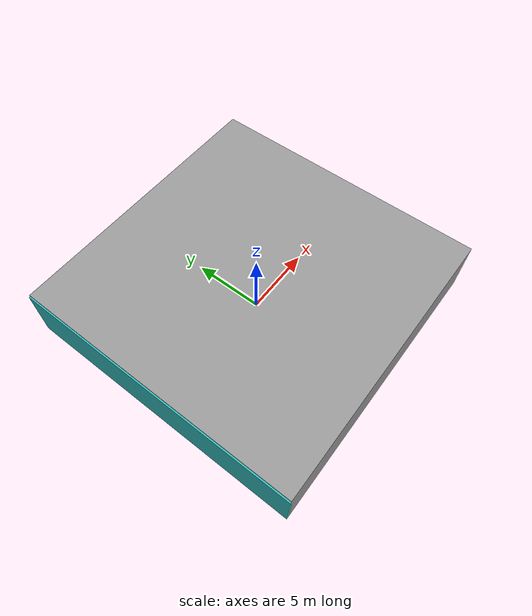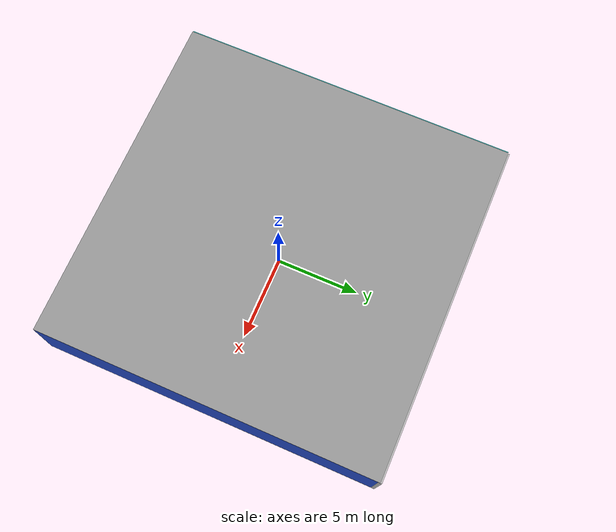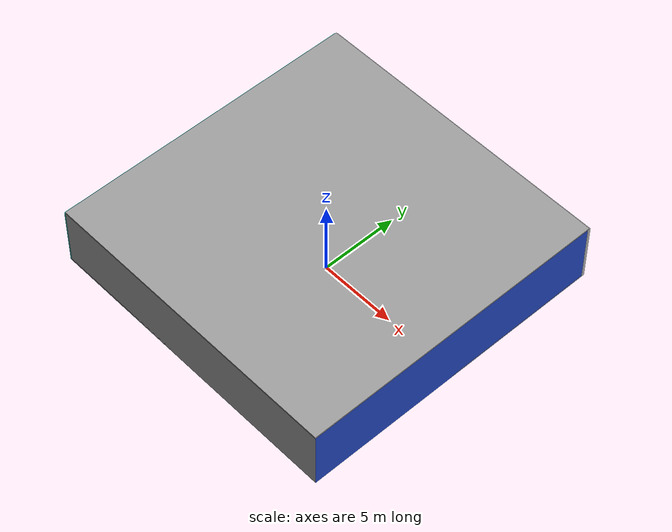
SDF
<sdf version="1.4">
 <world name="default">
  <physics type="ode">
   <max_step_size>0.001</max_step_size>
   <real_time_factor>1</real_time_factor>
   <real_time_update_rate>1000</real_time_update_rate>
   <gravity>0 0 -9.8</gravity>
  </physics>
  <scene><ambient>0.4 0.4 0.4 1</ambient><background>0.7 0.7 0.7 1</background><shadows>1</shadows></scene>
  <model name="Surrounding">
   <static>1</static>
   <link name="Ceiling">
    <collision name="Ceiling_Collision"><geometry><box><size>20 20 0.1</size></box></geometry></collision>
    <visual name="Ceiling_Visual">
     <geometry><box><size>20 20 0.1</size></box></geometry>
     <material>
      <script><uri>file://media/materials/scripts/gazebo.material</uri><name>Gazebo/GreyGradientSky</name></script>
     </material>
    </visual>
    <pose>0 0 4.05 0 0 0</pose>
   </link>
   <link name="Wall_South">
    <collision name="Wall_South_Collision">
     <geometry><box><size>20 0 4</size></box></geometry>
     <pose>0 0 2 0 -0 0</pose>
    </collision>
    <visual name="Wall_South_Visual">
     <pose>0 0 2 0 -0 0</pose>
     <geometry><box><size>20 0 4</size></box></geometry>
     <material>
      <script><uri>file://media/materials/scripts/gazebo.material</uri><name>Gazebo/GreyGradientSky</name></script>
     </material>
    </visual>
    <velocity_decay><linear>0</linear><angular>0</angular></velocity_decay>
    <pose>0 -10 0 0 -0 0</pose>
   </link>
   <link name="Wall_East">
    <collision name="Wall_21_Collision">
     <geometry><box><size>20 0 4</size></box></geometry>
     <pose>0 0 2 0 -0 0</pose>
    </collision>
    <visual name="Wall_21_Visual">
     <pose>0 0 2 0 -0 0</pose>
     <geometry><box><size>20 0 4</size></box></geometry>
     <material>
      <script><uri>file://media/materials/scripts/gazebo.material</uri><name>Gazebo/BlueGlow</name></script>
     </material>
    </visual>
    <velocity_decay><linear>0</linear><angular>0</angular></velocity_decay>
    <pose>10 0 0 0 -0 1.5708</pose>
   </link>
   <link name="Wall_North">
    <collision name="Wall_22_Collision">
     <geometry><box><size>20 0.2 4</size></box></geometry>
     <pose>0 0 2 0 -0 0</pose>
    </collision>
    <visual name="Wall_22_Visual">
     <pose>0 0 2 0 -0 0</pose>
     <geometry><box><size>20 0.2 4</size></box></geometry>
     <material>
      <script><uri>file://media/materials/scripts/gazebo.material</uri><name>Gazebo/PioneerBody</name></script>
     </material>
    </visual>
    <velocity_decay><linear>0</linear><angular>0</angular></velocity_decay>
    <pose>0 10 0 0 -0 0</pose>
   </link>
   <link name="Wall_West">
    <collision name="Wall_23_Collision">
     <geometry><box><size>20 0.2 4</size></box></geometry>
     <pose>0 0 2 0 -0 0</pose>
    </collision>
    <visual name="Wall_23_Visual">
     <pose>0 0 2 0 -0 0</pose>
     <geometry><box><size>20 0.2 4</size></box></geometry>
     <material>
      <script><uri>file://media/materials/scripts/gazebo.material</uri><name>Gazebo/Turquoise</name></script>
     </material>
    </visual>
    <velocity_decay><linear>0</linear><angular>0</angular></velocity_decay>
    <pose>-10 0 0 0 0 -1.5708</pose>
   </link>
   <link name="Ground_link">
    <collision name="collision">
     <pose>0 0 .05 0 -0 0</pose>
     <geometry><box><size>20 20 0.1</size></box></geometry>
    </collision>
    <visual name="visual">
     <pose>0 0 .05 0 -0 0</pose>
     <geometry><box><size>20 20 0.1</size></box></geometry>
     <material>
      <script><uri>file://media/materials/scripts/gazebo.material</uri><name>Gazebo/GreyTransparent</name></script>
     </material>
    </visual>
   </link>
   <static>1</static>
  </model>
  <spherical_coordinates>
   <surface_model>EARTH_WGS84</surface_model>
   <latitude_deg>0</latitude_deg>
   <longitude_deg>0</longitude_deg>
   <elevation>0</elevation>
   <heading_deg>0</heading_deg>
  </spherical_coordinates>
  <light name="lightball_0" type="diffuse">
   <diffuse>0.8 0.8 0.8 1</diffuse>
   <specular>0.2 0.2 0.2 1</specular>
   <attenuation>
    <range>100</range>
    <constant>0.7</constant>
    <linear>0.01</linear>
    <quadratic>0.001</quadratic>
   </attenuation>
   <direction>-0.5 0.1 -0.9</direction>
   <pose>-6.13897293477 -0.906216294209 2.19579730607 0 0 0</pose>
  </light>
  <light name="lightball_1" type="diffuse">
   <diffuse>0.8 0.8 0.8 1</diffuse>
   <specular>0.2 0.2 0.2 1</specular>
   <attenuation>
    <range>100</range>
    <constant>0.7</constant>
    <linear>0.01</linear>
    <quadratic>0.001</quadratic>
   </attenuation>
   <direction>-0.5 0.1 -0.9</direction>
   <pose>1.99689737927 -9.441610287 2.96383214236 0 0 0</pose>
  </light>
  <light name="lightball_2" type="diffuse">
   <diffuse>0.8 0.8 0.8 1</diffuse>
   <specular>0.2 0.2 0.2 1</specular>
   <attenuation>
    <range>100</range>
    <constant>0.7</constant>
    <linear>0.01</linear>
    <quadratic>0.001</quadratic>
   </attenuation>
   <direction>-0.5 0.1 -0.9</direction>
   <pose>0.82563271576 -4.35414813023 1.14372326048 0 0 0</pose>
  </light>
  <light name="lightball_3" type="diffuse">
   <diffuse>0.8 0.8 0.8 1</diffuse>
   <specular>0.2 0.2 0.2 1</specular>
   <attenuation>
    <range>100</range>
    <constant>0.7</constant>
    <linear>0.01</linear>
    <quadratic>0.001</quadratic>
   </attenuation>
   <direction>-0.5 0.1 -0.9</direction>
   <pose>6.70375515236 5.64724782464 3.38953433739 0 0 0</pose>
  </light>
  <light name="lightball_4" type="diffuse">
   <diffuse>0.8 0.8 0.8 1</diffuse>
   <specular>0.2 0.2 0.2 1</specular>
   <attenuation>
    <range>100</range>
    <constant>0.7</constant>
    <linear>0.01</linear>
    <quadratic>0.001</quadratic>
   </attenuation>
   <direction>-0.5 0.1 -0.9</direction>
   <pose>5.71366999187 -6.46693241032 0.991177118645 0 0 0</pose>
  </light>
  <light name="lightball_5" type="diffuse">
   <diffuse>0.8 0.8 0.8 1</diffuse>
   <specular>0.2 0.2 0.2 1</specular>
   <attenuation>
    <range>100</range>
    <constant>0.7</constant>
    <linear>0.01</linear>
    <quadratic>0.001</quadratic>
   </attenuation>
   <direction>-0.5 0.1 -0.9</direction>
   <pose>0.586623435115 -6.18874938888 1.5561358713 0 0 0</pose>
  </light>
  <light name="lightball_6" type="diffuse">
   <diffuse>0.8 0.8 0.8 1</diffuse>
   <specular>0.2 0.2 0.2 1</specular>
   <attenuation>
    <range>100</range>
    <constant>0.7</constant>
    <linear>0.01</linear>
    <quadratic>0.001</quadratic>
   </attenuation>
   <direction>-0.5 0.1 -0.9</direction>
   <pose>-2.97401159433 -8.08346389623 1.02627421046 0 0 0</pose>
  </light>
  <light name="lightball_7" type="diffuse">
   <diffuse>0.8 0.8 0.8 1</diffuse>
   <specular>0.2 0.2 0.2 1</specular>
   <attenuation>
    <range>100</range>
    <constant>0.7</constant>
    <linear>0.01</linear>
    <quadratic>0.001</quadratic>
   </attenuation>
   <direction>-0.5 0.1 -0.9</direction>
   <pose>-5.19649681911 -3.09677943146 2.20774190526 0 0 0</pose>
  </light>
  <light name="lightball_8" type="diffuse">
   <diffuse>0.8 0.8 0.8 1</diffuse>
   <specular>0.2 0.2 0.2 1</specular>
   <attenuation>
    <range>100</range>
    <constant>0.7</constant>
    <linear>0.01</linear>
    <quadratic>0.001</quadratic>
   </attenuation>
   <direction>-0.5 0.1 -0.9</direction>
   <pose>1.45485873929 -7.23324881852 1.25474356081 0 0 0</pose>
  </light>
  <light name="lightball_9" type="diffuse">
   <diffuse>0.8 0.8 0.8 1</diffuse>
   <specular>0.2 0.2 0.2 1</specular>
   <attenuation>
    <range>100</range>
    <constant>0.7</constant>
    <linear>0.01</linear>
    <quadratic>0.001</quadratic>
   </attenuation>
   <direction>-0.5 0.1 -0.9</direction>
   <pose>4.30696843902 7.39249143321 3.07939403254 0 0 0</pose>
  </light>
  <light name="lightball_10" type="diffuse">
   <diffuse>0.8 0.8 0.8 1</diffuse>
   <specular>0.2 0.2 0.2 1</specular>
   <attenuation>
    <range>100</range>
    <constant>0.7</constant>
    <linear>0.01</linear>
    <quadratic>0.001</quadratic>
   </attenuation>
   <direction>-0.5 0.1 -0.9</direction>
   <pose>-5.12491157552 2.20921384909 2.84267580873 0 0 0</pose>
  </light>
  <include>
   <uri>model://construction_cone</uri>
   <pose>-7.70573358892 -6.5085398469 0 0 0 1.00791708943</pose>
  </include>
  <include>
   <uri>model://robocup_3Dsim_goal</uri>
   <pose>-4.39197330214 3.76830019033 0 0 0 2.88180476822</pose>
  </include>
  <include><uri>model://cabinet</uri><pose>-1.06186071092 -7.68427334345 0 0 0 0.719060933179</pose></include>
  <include>
   <uri>model://construction_cone</uri>
   <pose>-1.06043076987 6.52717961212 0 0 0 1.89550299749</pose>
  </include>
  <include>
   <uri>model://robocup_3Dsim_goal</uri>
   <pose>6.50756002049 -4.24603070476 0 0 0 3.01874930663</pose>
  </include>
 </world>
</sdf>

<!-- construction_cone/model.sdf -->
<sdf version="1.5">
  <model name="Construction Cone">
    <link name="link">
      <collision name="collision">
        <geometry>
          <mesh>
            <scale>10 10 10</scale>
            <uri>file://isr-testbed/construction_cone/meshes/construction_cone.dae</uri>
          </mesh>
        </geometry>
      </collision>
      <visual name="visual">
        <geometry>
          <mesh>
            <scale>10 10 10</scale>
            <uri>file://isr-testbed/construction_cone/meshes/construction_cone.dae</uri>
          </mesh>
        </geometry>
      </visual>
    </link>
  </model>
</sdf>

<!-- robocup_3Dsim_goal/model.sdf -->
<sdf version="1.5">
  <model name="robocup_3d_goal">
    <static>true</static>
    <link name="left_post">
      <pose>0 1.05 0.45 0 0 0</pose>
      <collision name="collision">
        <geometry>
          <cylinder>
            <radius>0.05</radius>
            <length>0.9</length>
          </cylinder>
        </geometry>
      </collision>
      <visual name="visual">
        <geometry>
          <cylinder>
            <radius>0.05</radius>
            <length>0.9</length>
          </cylinder>
        </geometry>
        <material>
          <script>
            <uri>file://media/materials/scripts/gazebo.material</uri>
            <name>Gazebo/ZincYellow</name>
          </script>
        </material>
      </visual>
    </link>
    <link name="left_support_horiz_lower">
      <pose>0.30 1.05 0.01 0 0 0</pose>
      <collision name="collision">
        <geometry>
          <box>
            <size>0.50 0.02 0.02</size>
          </box>
        </geometry>
      </collision>
      <visual name="visual">
        <geometry>
          <box>
            <size>0.50 0.02 0.02</size>
          </box>
        </geometry>
        <material>
          <script>
            <uri>file://media/materials/scripts/gazebo.material</uri>
            <name>Gazebo/White</name>
          </script>
        </material>
      </visual>
    </link>
    <link name="left_support_horiz_upper">
      <pose>0.30 1.05 0.79 0 0 0</pose>
      <collision name="collision">
        <geometry>
          <box>
            <size>0.50 0.02 0.02</size>
          </box>
        </geometry>
      </collision>
      <visual name="visual">
        <geometry>
          <box>
            <size>0.50 0.02 0.02</size>
          </box>
        </geometry>
        <material>
          <script>
            <uri>file://media/materials/scripts/gazebo.material</uri>
            <name>Gazebo/White</name>
          </script>
        </material>
      </visual>
    </link>
    <link name="left_support_vertical">
      <pose>0.56 1.05 0.4 0 1.5708 0</pose>
      <collision name="collision">
        <geometry>
          <box>
            <size>0.80 0.02 0.02</size>
          </box>
        </geometry>
      </collision>
      <visual name="visual">
        <geometry>
          <box>
            <size>0.80 0.02 0.02</size>
          </box>
        </geometry>
        <material>
          <script>
            <uri>file://media/materials/scripts/gazebo.material</uri>
            <name>Gazebo/White</name>
          </script>
        </material>
      </visual>
    </link>
    <link name="right_support_horiz_lower">
      <pose>0.30 -1.05 0.01 0 0 0</pose>
      <collision name="collision">
        <geometry>
          <box>
            <size>0.50 0.02 0.02</size>
          </box>
        </geometry>
      </collision>
      <visual name="visual">
        <geometry>
          <box>
            <size>0.50 0.02 0.02</size>
          </box>
        </geometry>
        <material>
          <script>
            <uri>file://media/materials/scripts/gazebo.material</uri>
            <name>Gazebo/White</name>
          </script>
        </material>
      </visual>
    </link>
    <link name="right_support_horiz_upper">
      <pose>0.30 -1.05 0.79 0 0 0</pose>
      <collision name="collision">
        <geometry>
          <box>
            <size>0.50 0.02 0.02</size>
          </box>
        </geometry>
      </collision>
      <visual name="visual">
        <geometry>
          <box>
            <size>0.50 0.02 0.02</size>
          </box>
        </geometry>
        <material>
          <script>
            <uri>file://media/materials/scripts/gazebo.material</uri>
            <name>Gazebo/White</name>
          </script>
        </material>
      </visual>
    </link>
    <link name="right_support_vertical">
      <pose>0.56 -1.05 0.4 0 1.5708 0</pose>
      <collision name="collision">
        <geometry>
          <box>
            <size>0.80 0.02 0.02</size>
          </box>
        </geometry>
      </collision>
      <visual name="visual">
        <geometry>
          <box>
            <size>0.80 0.02 0.02</size>
          </box>
        </geometry>
        <material>
          <script>
            <uri>file://media/materials/scripts/gazebo.material</uri>
            <name>Gazebo/White</name>
          </script>
        </material>
      </visual>
    </link>
    <link name="center_support_horiz_lower">
      <pose>0.56 0 0.01 0 1.5708 0</pose>
      <collision name="collision">
        <geometry>
          <box>
            <size>0.02 2.08 0.02</size>
          </box>
        </geometry>
      </collision>
      <visual name="visual">
        <geometry>
          <box>
            <size>0.02 2.08 0.02</size>
          </box>
        </geometry>
        <material>
          <script>
            <uri>file://media/materials/scripts/gazebo.material</uri>
            <name>Gazebo/White</name>
          </script>
        </material>
      </visual>
    </link>
    <link name="center_support_horiz_upper">
      <pose>0.56 0 0.79 0 1.5708 0</pose>
      <collision name="collision">
        <geometry>
          <box>
            <size>0.02 2.08 0.02</size>
          </box>
        </geometry>
      </collision>
      <visual name="visual">
        <geometry>
          <box>
            <size>0.02 2.08 0.02</size>
          </box>
        </geometry>
        <material>
          <script>
            <uri>file://media/materials/scripts/gazebo.material</uri>
            <name>Gazebo/White</name>
          </script>
        </material>
      </visual>
    </link>
    <link name="right_post">
      <pose>0 -1.05 0.45 0 0 0</pose>
      <collision name="collision">
        <geometry>
          <cylinder>
            <radius>0.05</radius>
            <length>0.9</length>
          </cylinder>
        </geometry>
      </collision>
      <visual name="visual">
        <geometry>
          <cylinder>
            <radius>0.05</radius>
            <length>0.9</length>
          </cylinder>
        </geometry>
        <material>
          <script>
            <uri>file://media/materials/scripts/gazebo.material</uri>
            <name>Gazebo/ZincYellow</name>
          </script>
        </material>
      </visual>
    </link>
    <link name="crossbar">
      <pose>0 0 0.85 1.57 1.57 0</pose>
      <collision name="collision">
        <geometry>
          <cylinder>
            <radius>0.05</radius>
            <length>2.0</length>
          </cylinder>
        </geometry>
      </collision>
      <visual name="visual">
        <geometry>
          <cylinder>
            <radius>0.05</radius>
            <length>2.0</length>
          </cylinder>
        </geometry>
        <material>
          <script>
            <uri>file://media/materials/scripts/gazebo.material</uri>
            <name>Gazebo/ZincYellow</name>
          </script>
        </material>
      </visual>
    </link>
    <link name="center_net">
      <pose>0.56 0 0.40 0 0 0</pose>
      <collision name="collision">
        <geometry>
          <box>
            <size>0.01 2.1 0.80</size>
          </box>
        </geometry>
      </collision>
      <visual name="visual">
        <geometry>
          <box>
            <size>0.01 2.1 0.80</size>
          </box>
        </geometry>
        <material>
          <script>
            <uri>model://../model_source/models/robocup09_spl_field/materials/scripts/</uri>
            <uri>model://../model_source/models/robocup09_spl_field/materials/textures/</uri>
            <name>RoboCup/Net</name>
          </script>
        </material>
      </visual>
    </link>
    <link name="left_net">
      <pose>0.30 1.05 0.40 0 0 0</pose>
      <collision name="collision">
        <geometry>
          <box>
            <size>0.50 0.01 0.76</size>
          </box>
        </geometry>
      </collision>
      <visual name="visual">
        <geometry>
          <box>
            <size>0.50 0.01 0.76</size>
          </box>
        </geometry>
        <material>
          <script>
            <uri>model://../model_source/models/robocup09_spl_field/materials/scripts/</uri>
            <uri>model://../model_source/models/robocup09_spl_field/materials/textures/</uri>
            <name>RoboCup/Net</name>
          </script>
        </material>
      </visual>
    </link>
    <link name="right_net">
      <pose>0.30 -1.05 0.40 0 0 0</pose>
      <collision name="collision">
        <geometry>
          <box>
            <size>0.50 0.01 0.76</size>
          </box>
        </geometry>
      </collision>
      <visual name="visual">
        <geometry>
          <box>
            <size>0.50 0.01 0.76</size>
          </box>
        </geometry>
        <material>
          <script>
            <uri>model://../model_source/models/robocup09_spl_field/materials/scripts/</uri>
            <uri>model://../model_source/models/robocup09_spl_field/materials/textures/</uri>
            <name>RoboCup/Net</name>
          </script>
        </material>
      </visual>
    </link>
  </model>
</sdf>

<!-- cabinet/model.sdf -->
<sdf version="1.5">
  <model name="cabinet">
    <static>true</static>
    <link name="cabinet_bottom_plate">
      <inertial>
        <pose>0 0 -1 0 0 0</pose>
        <inertia>
          <ixx>2.050000</ixx>
          <ixy>0</ixy>
          <ixz>0</ixz>
          <iyy>2.050000</iyy>
          <iyz>0</iyz>
          <izz>2.050000</izz>
        </inertia>
        <mass>25.000000</mass>
      </inertial>
      <collision name="cabinet_bottom_plate_geom">
        <pose>0 0 0.010000 0 0 0</pose>
        <geometry>
          <box>
            <size>0.450000 0.450000 0.020000</size>
          </box>
        </geometry>
      </collision>
      <visual name="cabinet_bottom_plate_geom_visual">
        <pose>0 0 0.010000 0 0 0</pose>
        <geometry>
          <box>
            <size>0.450000 0.450000 0.020000</size>
          </box>
        </geometry>
        <material>
          <script>
            <uri>model://media/materials/scripts/gazebo.material</uri>
            <name>Gazebo/Wood</name>
          </script>
        </material>
      </visual>
      <collision name="cabinet_bottom_plate_geom_cabinet_back_plate">
        <pose>0.235000 0 0.510000 0 0 0</pose>
        <geometry>
          <box>
            <size>0.020000 0.450000 1.020000</size>
          </box>
        </geometry>
      </collision>
      <visual name="cabinet_bottom_plate_geom_cabinet_back_plate_visual">
        <pose>0.235000 0 0.510000 0 0 0</pose>
        <geometry>
          <box>
            <size>0.020000 0.450000 1.020000</size>
          </box>
        </geometry>
        <material>
          <script>
            <uri>model://media/materials/scripts/gazebo.material</uri>
            <name>Gazebo/Wood</name>
          </script>
        </material>
      </visual>
      <collision name="cabinet_bottom_plate_geom_cabinet_left_plate">
        <pose>0 0.235000 0.510000 0 0 0</pose>
        <geometry>
          <box>
            <size>0.450000 0.020000 1.020000</size>
          </box>
        </geometry>
      </collision>
      <visual name="cabinet_bottom_plate_geom_cabinet_left_plate_visual">
        <pose>0 0.235000 0.510000 0 0 0</pose>
        <geometry>
          <box>
            <size>0.450000 0.020000 1.020000</size>
          </box>
        </geometry>
        <material>
          <script>
            <uri>model://media/materials/scripts/gazebo.material</uri>
            <name>Gazebo/Wood</name>
          </script>
        </material>
      </visual>
      <collision name="cabinet_bottom_plate_geom_cabinet_middle_plate">
        <pose>0 0 0.510000 0 0 0</pose>
        <geometry>
          <box>
            <size>0.450000 0.450000 0.020000</size>
          </box>
        </geometry>
      </collision>
      <visual name="cabinet_bottom_plate_geom_cabinet_middle_plate_visual">
        <pose>0 0 0.510000 0 0 0</pose>
        <geometry>
          <box>
            <size>0.450000 0.450000 0.020000</size>
          </box>
        </geometry>
        <material>
          <script>
            <uri>model://media/materials/scripts/gazebo.material</uri>
            <name>Gazebo/Wood</name>
          </script>
        </material>
      </visual>
      <collision name="cabinet_bottom_plate_geom_cabinet_right_plate">
        <pose>0 -0.235000 0.510000 0 0 0</pose>
        <geometry>
          <box>
            <size>0.450000 0.020000 1.020000</size>
          </box>
        </geometry>
      </collision>
      <visual name="cabinet_bottom_plate_geom_cabinet_right_plate_visual">
        <pose>0 -0.235000 0.510000 0 0 0</pose>
        <geometry>
          <box>
            <size>0.450000 0.020000 1.020000</size>
          </box>
        </geometry>
        <material>
          <script>
            <uri>model://media/materials/scripts/gazebo.material</uri>
            <name>Gazebo/Wood</name>
          </script>
        </material>
      </visual>
      <collision name="cabinet_bottom_plate_geom_cabinet_top_plate">
        <pose>0 0 1.010000 0 0 0</pose>
        <geometry>
          <box>
            <size>0.450000 0.450000 0.020000</size>
          </box>
        </geometry>
      </collision>
      <visual name="cabinet_bottom_plate_geom_cabinet_top_plate_visual">
        <pose>0 0 1.010000 0 0 0</pose>
        <geometry>
          <box>
            <size>0.450000 0.450000 0.020000</size>
          </box>
        </geometry>
        <material>
          <script>
            <uri>model://media/materials/scripts/gazebo.material</uri>
            <name>Gazebo/Wood</name>
          </script>
        </material>
      </visual>
    </link>
  </model>
</sdf>
